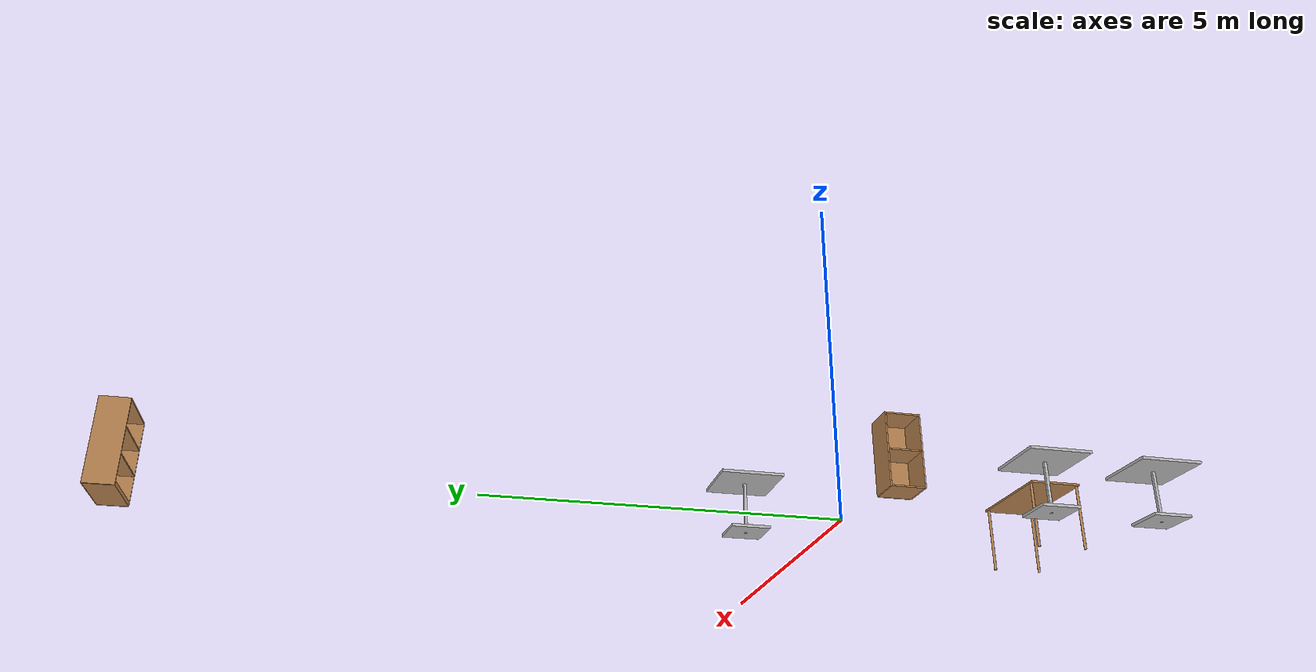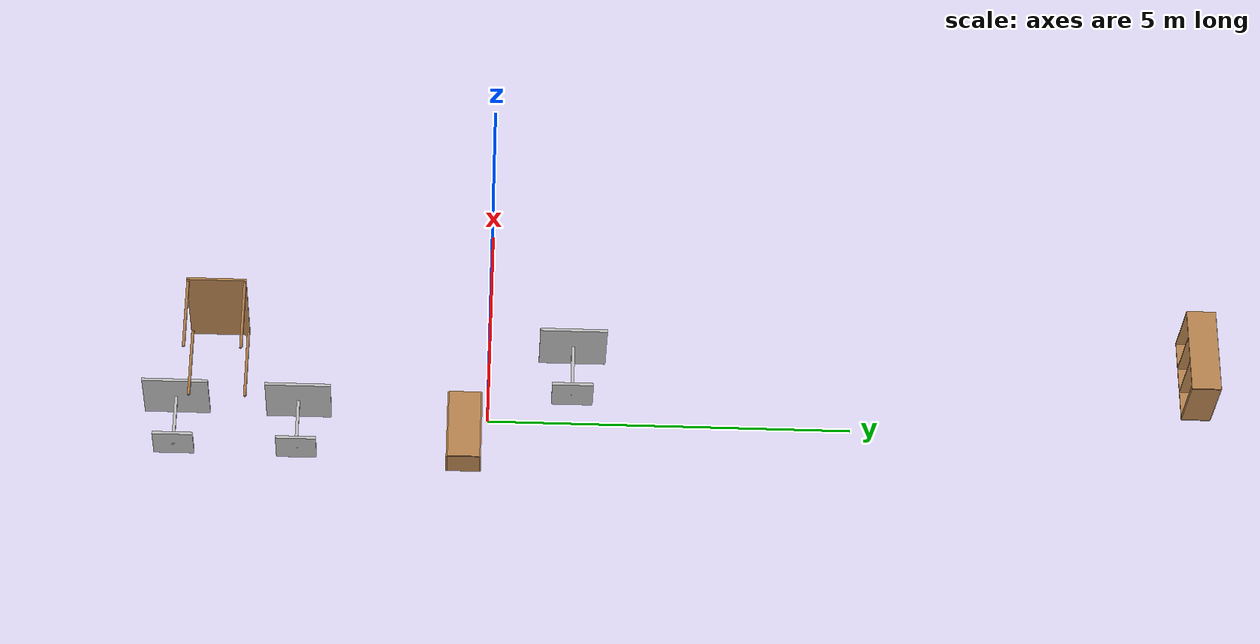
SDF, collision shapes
<?xml version='1.0'?>
<sdf version='1.6'>
  <model name='robot'>
    <model name='bookshelf'>
      <static>1</static>
      <link name='link'>
        <inertial>
          <mass>1</mass>
        </inertial>
        <collision name='back'>
          <pose frame=''>0 0.005 0.6 0 -0 0</pose>
          <geometry>
            <box>
              <size>0.9 0.01 1.2</size>
            </box>
          </geometry>
        </collision>
        <visual name='visual1'>
          <pose frame=''>0 0.005 0.6 0 -0 0</pose>
          <geometry>
            <box>
              <size>0.9 0.01 1.2</size>
            </box>
          </geometry>
          <material>
            <script>
              <uri>file://media/materials/scripts/gazebo.material</uri>
              <name>Gazebo/Wood</name>
            </script>
          </material>
        </visual>
        <collision name='left_side'>
          <pose frame=''>0.45 -0.195 0.6 0 -0 0</pose>
          <geometry>
            <box>
              <size>0.02 0.4 1.2</size>
            </box>
          </geometry>
        </collision>
        <visual name='visual2'>
          <pose frame=''>0.45 -0.195 0.6 0 -0 0</pose>
          <geometry>
            <box>
              <size>0.02 0.4 1.2</size>
            </box>
          </geometry>
          <material>
            <script>
              <uri>file://media/materials/scripts/gazebo.material</uri>
              <name>Gazebo/Wood</name>
            </script>
          </material>
        </visual>
        <collision name='right_side'>
          <pose frame=''>-0.45 -0.195 0.6 0 -0 0</pose>
          <geometry>
            <box>
              <size>0.02 0.4 1.2</size>
            </box>
          </geometry>
        </collision>
        <visual name='visual3'>
          <pose frame=''>-0.45 -0.195 0.6 0 -0 0</pose>
          <geometry>
            <box>
              <size>0.02 0.4 1.2</size>
            </box>
          </geometry>
          <material>
            <script>
              <uri>file://media/materials/scripts/gazebo.material</uri>
              <name>Gazebo/Wood</name>
            </script>
          </material>
        </visual>
        <collision name='bottom'>
          <pose frame=''>0 -0.195 0.03 0 -0 0</pose>
          <geometry>
            <box>
              <size>0.88 0.4 0.06</size>
            </box>
          </geometry>
        </collision>
        <visual name='visual4'>
          <pose frame=''>0 -0.195 0.03 0 -0 0</pose>
          <geometry>
            <box>
              <size>0.88 0.4 0.06</size>
            </box>
          </geometry>
          <material>
            <script>
              <uri>file://media/materials/scripts/gazebo.material</uri>
              <name>Gazebo/Wood</name>
            </script>
          </material>
        </visual>
        <collision name='top'>
          <pose frame=''>0 -0.195 1.19 0 -0 0</pose>
          <geometry>
            <box>
              <size>0.88 0.4 0.02</size>
            </box>
          </geometry>
        </collision>
        <visual name='visual5'>
          <pose frame=''>0 -0.195 1.19 0 -0 0</pose>
          <geometry>
            <box>
              <size>0.88 0.4 0.02</size>
            </box>
          </geometry>
          <material>
            <script>
              <uri>file://media/materials/scripts/gazebo.material</uri>
              <name>Gazebo/Wood</name>
            </script>
          </material>
        </visual>
        <collision name='low_shelf'>
          <pose frame=''>0 -0.195 0.43 0 -0 0</pose>
          <geometry>
            <box>
              <size>0.88 0.4 0.02</size>
            </box>
          </geometry>
        </collision>
        <visual name='visual6'>
          <pose frame=''>0 -0.195 0.43 0 -0 0</pose>
          <geometry>
            <box>
              <size>0.88 0.4 0.02</size>
            </box>
          </geometry>
          <material>
            <script>
              <uri>file://media/materials/scripts/gazebo.material</uri>
              <name>Gazebo/Wood</name>
            </script>
          </material>
        </visual>
        <collision name='high_shelf'>
          <pose frame=''>0 -0.195 0.8 0 -0 0</pose>
          <geometry>
            <box>
              <size>0.88 0.4 0.02</size>
            </box>
          </geometry>
        </collision>
        <visual name='visual7'>
          <pose frame=''>0 -0.195 0.8 0 -0 0</pose>
          <geometry>
            <box>
              <size>0.88 0.4 0.02</size>
            </box>
          </geometry>
          <material>
            <script>
              <uri>file://media/materials/scripts/gazebo.material</uri>
              <name>Gazebo/Wood</name>
            </script>
          </material>
        </visual>
      </link>
      <pose frame=''>1.0304 9.91009 0 0 -0 0</pose>
    </model>
    <model name='cabinet'>
      <static>1</static>
      <link name='cabinet_bottom_plate'>
        <inertial>
          <pose frame=''>0 0 -1 0 -0 0</pose>
          <inertia>
            <ixx>2.05</ixx>
            <ixy>0</ixy>
            <ixz>0</ixz>
            <iyy>2.05</iyy>
            <iyz>0</iyz>
            <izz>2.05</izz>
          </inertia>
          <mass>25</mass>
        </inertial>
        <collision name='cabinet_bottom_plate_geom'>
          <pose frame=''>0 0 0.01 0 -0 0</pose>
          <geometry>
            <box>
              <size>0.45 0.45 0.02</size>
            </box>
          </geometry>
        </collision>
        <visual name='cabinet_bottom_plate_geom_visual'>
          <pose frame=''>0 0 0.01 0 -0 0</pose>
          <geometry>
            <box>
              <size>0.45 0.45 0.02</size>
            </box>
          </geometry>
          <material>
            <script>
              <uri>file://media/materials/scripts/gazebo.material</uri>
              <name>Gazebo/Wood</name>
            </script>
          </material>
        </visual>
        <collision name='cabinet_bottom_plate_geom_cabinet_back_plate'>
          <pose frame=''>0.235 0 0.51 0 -0 0</pose>
          <geometry>
            <box>
              <size>0.02 0.45 1.02</size>
            </box>
          </geometry>
        </collision>
        <visual name='cabinet_bottom_plate_geom_cabinet_back_plate_visual'>
          <pose frame=''>0.235 0 0.51 0 -0 0</pose>
          <geometry>
            <box>
              <size>0.02 0.45 1.02</size>
            </box>
          </geometry>
          <material>
            <script>
              <uri>file://media/materials/scripts/gazebo.material</uri>
              <name>Gazebo/Wood</name>
            </script>
          </material>
        </visual>
        <collision name='cabinet_bottom_plate_geom_cabinet_left_plate'>
          <pose frame=''>0 0.235 0.51 0 -0 0</pose>
          <geometry>
            <box>
              <size>0.45 0.02 1.02</size>
            </box>
          </geometry>
        </collision>
        <visual name='cabinet_bottom_plate_geom_cabinet_left_plate_visual'>
          <pose frame=''>0 0.235 0.51 0 -0 0</pose>
          <geometry>
            <box>
              <size>0.45 0.02 1.02</size>
            </box>
          </geometry>
          <material>
            <script>
              <uri>file://media/materials/scripts/gazebo.material</uri>
              <name>Gazebo/Wood</name>
            </script>
          </material>
        </visual>
        <collision name='cabinet_bottom_plate_geom_cabinet_middle_plate'>
          <pose frame=''>0 0 0.51 0 -0 0</pose>
          <geometry>
            <box>
              <size>0.45 0.45 0.02</size>
            </box>
          </geometry>
        </collision>
        <visual name='cabinet_bottom_plate_geom_cabinet_middle_plate_visual'>
          <pose frame=''>0 0 0.51 0 -0 0</pose>
          <geometry>
            <box>
              <size>0.45 0.45 0.02</size>
            </box>
          </geometry>
          <material>
            <script>
              <uri>file://media/materials/scripts/gazebo.material</uri>
              <name>Gazebo/Wood</name>
            </script>
          </material>
        </visual>
        <collision name='cabinet_bottom_plate_geom_cabinet_right_plate'>
          <pose frame=''>0 -0.235 0.51 0 -0 0</pose>
          <geometry>
            <box>
              <size>0.45 0.02 1.02</size>
            </box>
          </geometry>
        </collision>
        <visual name='cabinet_bottom_plate_geom_cabinet_right_plate_visual'>
          <pose frame=''>0 -0.235 0.51 0 -0 0</pose>
          <geometry>
            <box>
              <size>0.45 0.02 1.02</size>
            </box>
          </geometry>
          <material>
            <script>
              <uri>file://media/materials/scripts/gazebo.material</uri>
              <name>Gazebo/Wood</name>
            </script>
          </material>
        </visual>
        <collision name='cabinet_bottom_plate_geom_cabinet_top_plate'>
          <pose frame=''>0 0 1.01 0 -0 0</pose>
          <geometry>
            <box>
              <size>0.45 0.45 0.02</size>
            </box>
          </geometry>
        </collision>
        <visual name='cabinet_bottom_plate_geom_cabinet_top_plate_visual'>
          <pose frame=''>0 0 1.01 0 -0 0</pose>
          <geometry>
            <box>
              <size>0.45 0.45 0.02</size>
            </box>
          </geometry>
          <material>
            <script>
              <uri>file://media/materials/scripts/gazebo.material</uri>
              <name>Gazebo/Wood</name>
            </script>
          </material>
        </visual>
      </link>
      <pose frame=''>-1.29007 -0.327732 0 0 -0 0</pose>
    </model>
    <model name='cafe_table'>
      <static>1</static>
      <link name='link'>
        <collision name='surface'>
          <pose frame=''>0 0 0.755 0 -0 0</pose>
          <geometry>
            <box>
              <size>0.913 0.913 0.04</size>
            </box>
          </geometry>
        </collision>
        <collision name='column'>
          <pose frame=''>0 0 0.37 0 -0 0</pose>
          <geometry>
            <box>
              <size>0.042 0.042 0.74</size>
            </box>
          </geometry>
        </collision>
        <collision name='base'>
          <pose frame=''>0 0 0.02 0 -0 0</pose>
          <geometry>
            <box>
              <size>0.56 0.56 0.04</size>
            </box>
          </geometry>
        </collision>
        <visual name='visual'>
          <geometry>
            <mesh>
              <uri>model://cafe_table/meshes/cafe_table.dae</uri>
            </mesh>
          </geometry>
        </visual>
      </link>
      <pose frame=''>-0.929724 -2.65955 0 0 -0 0</pose>
    </model>
    <model name='cafe_table_0'>
      <static>1</static>
      <link name='link'>
        <collision name='surface'>
          <pose frame=''>0 0 0.755 0 -0 0</pose>
          <geometry>
            <box>
              <size>0.913 0.913 0.04</size>
            </box>
          </geometry>
        </collision>
        <collision name='column'>
          <pose frame=''>0 0 0.37 0 -0 0</pose>
          <geometry>
            <box>
              <size>0.042 0.042 0.74</size>
            </box>
          </geometry>
        </collision>
        <collision name='base'>
          <pose frame=''>0 0 0.02 0 -0 0</pose>
          <geometry>
            <box>
              <size>0.56 0.56 0.04</size>
            </box>
          </geometry>
        </collision>
        <visual name='visual'>
          <geometry>
            <mesh>
              <uri>model://cafe_table/meshes/cafe_table.dae</uri>
            </mesh>
          </geometry>
        </visual>
      </link>
      <pose frame=''>-0.892098 -4.36235 0 0 -0 0</pose>
    </model>
    <model name='cafe_table_1'>
      <static>1</static>
      <link name='link'>
        <collision name='surface'>
          <pose frame=''>0 0 0.755 0 -0 0</pose>
          <geometry>
            <box>
              <size>0.913 0.913 0.04</size>
            </box>
          </geometry>
        </collision>
        <collision name='column'>
          <pose frame=''>0 0 0.37 0 -0 0</pose>
          <geometry>
            <box>
              <size>0.042 0.042 0.74</size>
            </box>
          </geometry>
        </collision>
        <collision name='base'>
          <pose frame=''>0 0 0.02 0 -0 0</pose>
          <geometry>
            <box>
              <size>0.56 0.56 0.04</size>
            </box>
          </geometry>
        </collision>
        <visual name='visual'>
          <geometry>
            <mesh>
              <uri>model://cafe_table/meshes/cafe_table.dae</uri>
            </mesh>
          </geometry>
        </visual>
      </link>
      <pose frame=''>0.839886 1.13294 0 0 -0 0</pose>
    </model>
    <model name='table'>
      <static>1</static>
      <link name='link'>
        <collision name='surface'>
          <pose frame=''>0 0 1 0 -0 0</pose>
          <geometry>
            <box>
              <size>1.5 0.8 0.03</size>
            </box>
          </geometry>
          <surface>
            <friction>
              <ode>
                <mu>0.6</mu>
                <mu2>0.6</mu2>
              </ode>
            </friction>
          </surface>
        </collision>
        <visual name='visual1'>
          <pose frame=''>0 0 1 0 -0 0</pose>
          <geometry>
            <box>
              <size>1.5 0.8 0.03</size>
            </box>
          </geometry>
          <material>
            <script>
              <uri>file://media/materials/scripts/gazebo.material</uri>
              <name>Gazebo/Wood</name>
            </script>
          </material>
        </visual>
        <collision name='front_left_leg'>
          <pose frame=''>0.68 0.38 0.5 0 -0 0</pose>
          <geometry>
            <cylinder>
              <radius>0.02</radius>
              <length>1</length>
            </cylinder>
          </geometry>
        </collision>
        <visual name='front_left_leg'>
          <pose frame=''>0.68 0.38 0.5 0 -0 0</pose>
          <geometry>
            <cylinder>
              <radius>0.02</radius>
              <length>1</length>
            </cylinder>
          </geometry>
          <material>
            <script>
              <uri>file://media/materials/scripts/gazebo.material</uri>
              <name>Gazebo/Grey</name>
            </script>
          </material>
        </visual>
        <collision name='front_right_leg'>
          <pose frame=''>0.68 -0.38 0.5 0 -0 0</pose>
          <geometry>
            <cylinder>
              <radius>0.02</radius>
              <length>1</length>
            </cylinder>
          </geometry>
        </collision>
        <visual name='front_right_leg'>
          <pose frame=''>0.68 -0.38 0.5 0 -0 0</pose>
          <geometry>
            <cylinder>
              <radius>0.02</radius>
              <length>1</length>
            </cylinder>
          </geometry>
          <material>
            <script>
              <uri>file://media/materials/scripts/gazebo.material</uri>
              <name>Gazebo/Grey</name>
            </script>
          </material>
        </visual>
        <collision name='back_right_leg'>
          <pose frame=''>-0.68 -0.38 0.5 0 -0 0</pose>
          <geometry>
            <cylinder>
              <radius>0.02</radius>
              <length>1</length>
            </cylinder>
          </geometry>
        </collision>
        <visual name='back_right_leg'>
          <pose frame=''>-0.68 -0.38 0.5 0 -0 0</pose>
          <geometry>
            <cylinder>
              <radius>0.02</radius>
              <length>1</length>
            </cylinder>
          </geometry>
          <material>
            <script>
              <uri>file://media/materials/scripts/gazebo.material</uri>
              <name>Gazebo/Grey</name>
            </script>
          </material>
        </visual>
        <collision name='back_left_leg'>
          <pose frame=''>-0.68 0.38 0.5 0 -0 0</pose>
          <geometry>
            <cylinder>
              <radius>0.02</radius>
              <length>1</length>
            </cylinder>
          </geometry>
        </collision>
        <visual name='back_left_leg'>
          <pose frame=''>-0.68 0.38 0.5 0 -0 0</pose>
          <geometry>
            <cylinder>
              <radius>0.02</radius>
              <length>1</length>
            </cylinder>
          </geometry>
          <material>
            <script>
              <uri>file://media/materials/scripts/gazebo.material</uri>
              <name>Gazebo/Grey</name>
            </script>
          </material>
        </visual>
      </link>
      <pose frame=''>1.24161 -3.6934 0 0 -0 0</pose>
    </model>
    <static>0</static>
    <allow_auto_disable>1</allow_auto_disable>
  </model>
</sdf>
